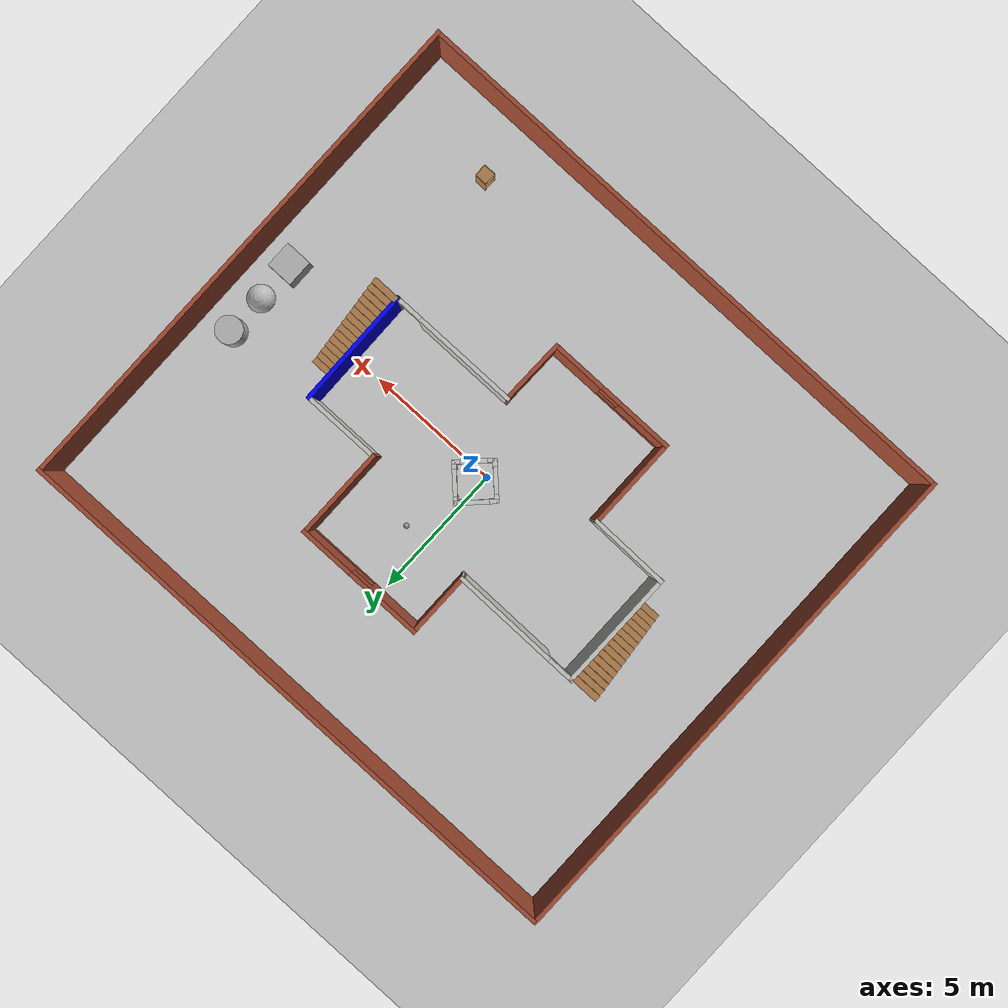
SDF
<sdf version="1.6">
 <world name="default">
  <model name="ground_plane">
   <static>1</static>
   <link name="link">
    <collision name="collision">
     <geometry><plane><normal>0 0 1</normal><size>100 100</size></plane></geometry>
     <surface><friction><ode><mu>100</mu><mu2>50</mu2></ode></friction></surface>
    </collision>
    <visual name="visual">
     <cast_shadows>0</cast_shadows>
     <geometry><plane><normal>0 0 1</normal><size>100 100</size></plane></geometry>
     <material>
      <script><uri>file://media/materials/scripts/gazebo.material</uri><name>Gazebo/Grey</name></script>
     </material>
    </visual>
   </link>
  </model>
  <model name="Gyandeeps_World">
   <link name="Stairs_1">
    <visual name="Stairs_1_Visual_0">
     <pose>6.58293 0.987313 0.083333 0 -0 0</pose>
     <geometry><box><size>1 0.233333 0.166667</size></box></geometry>
     <material>
      <script><uri>file://media/materials/scripts/gazebo.material</uri><name>Gazebo/Wood</name></script>
      <ambient>1 1 1 1</ambient>
     </material>
     <meta><layer>0</layer></meta>
    </visual>
    <collision name="Stairs_1_Collision_0">
     <geometry><box><size>1 0.233333 0.166667</size></box></geometry>
     <pose>6.58293 0.987313 0.083333 0 -0 0</pose>
    </collision>
    <visual name="Stairs_1_Visual_1">
     <pose>6.58293 0.75398 0.25 0 -0 0</pose>
     <geometry><box><size>1 0.233333 0.166667</size></box></geometry>
     <material>
      <script><uri>file://media/materials/scripts/gazebo.material</uri><name>Gazebo/Wood</name></script>
      <ambient>1 1 1 1</ambient>
     </material>
     <meta><layer>0</layer></meta>
    </visual>
    <collision name="Stairs_1_Collision_1">
     <geometry><box><size>1 0.233333 0.166667</size></box></geometry>
     <pose>6.58293 0.75398 0.25 0 -0 0</pose>
    </collision>
    <visual name="Stairs_1_Visual_2">
     <pose>6.58293 0.520647 0.416667 0 -0 0</pose>
     <geometry><box><size>1 0.233333 0.166667</size></box></geometry>
     <material>
      <script><uri>file://media/materials/scripts/gazebo.material</uri><name>Gazebo/Wood</name></script>
      <ambient>1 1 1 1</ambient>
     </material>
     <meta><layer>0</layer></meta>
    </visual>
    <collision name="Stairs_1_Collision_2">
     <geometry><box><size>1 0.233333 0.166667</size></box></geometry>
     <pose>6.58293 0.520647 0.416667 0 -0 0</pose>
    </collision>
    <visual name="Stairs_1_Visual_3">
     <pose>6.58293 0.287313 0.583333 0 -0 0</pose>
     <geometry><box><size>1 0.233333 0.166667</size></box></geometry>
     <material>
      <script><uri>file://media/materials/scripts/gazebo.material</uri><name>Gazebo/Wood</name></script>
      <ambient>1 1 1 1</ambient>
     </material>
     <meta><layer>0</layer></meta>
    </visual>
    <collision name="Stairs_1_Collision_3">
     <geometry><box><size>1 0.233333 0.166667</size></box></geometry>
     <pose>6.58293 0.287313 0.583333 0 -0 0</pose>
    </collision>
    <visual name="Stairs_1_Visual_4">
     <pose>6.58293 0.05398 0.75 0 -0 0</pose>
     <geometry><box><size>1 0.233333 0.166667</size></box></geometry>
     <material>
      <script><uri>file://media/materials/scripts/gazebo.material</uri><name>Gazebo/Wood</name></script>
      <ambient>1 1 1 1</ambient>
     </material>
     <meta><layer>0</layer></meta>
    </visual>
    <collision name="Stairs_1_Collision_4">
     <geometry><box><size>1 0.233333 0.166667</size></box></geometry>
     <pose>6.58293 0.05398 0.75 0 -0 0</pose>
    </collision>
    <visual name="Stairs_1_Visual_5">
     <pose>6.58293 -0.179353 0.916667 0 -0 0</pose>
     <geometry><box><size>1 0.233333 0.166667</size></box></geometry>
     <material>
      <script><uri>file://media/materials/scripts/gazebo.material</uri><name>Gazebo/Wood</name></script>
      <ambient>1 1 1 1</ambient>
     </material>
     <meta><layer>0</layer></meta>
    </visual>
    <collision name="Stairs_1_Collision_5">
     <geometry><box><size>1 0.233333 0.166667</size></box></geometry>
     <pose>6.58293 -0.179353 0.916667 0 -0 0</pose>
    </collision>
    <visual name="Stairs_1_Visual_6">
     <pose>6.58293 -0.412687 1.08333 0 -0 0</pose>
     <geometry><box><size>1 0.233333 0.166667</size></box></geometry>
     <material>
      <script><uri>file://media/materials/scripts/gazebo.material</uri><name>Gazebo/Wood</name></script>
      <ambient>1 1 1 1</ambient>
     </material>
     <meta><layer>0</layer></meta>
    </visual>
    <collision name="Stairs_1_Collision_6">
     <geometry><box><size>1 0.233333 0.166667</size></box></geometry>
     <pose>6.58293 -0.412687 1.08333 0 -0 0</pose>
    </collision>
    <visual name="Stairs_1_Visual_7">
     <pose>6.58293 -0.64602 1.25 0 -0 0</pose>
     <geometry><box><size>1 0.233333 0.166667</size></box></geometry>
     <material>
      <script><uri>file://media/materials/scripts/gazebo.material</uri><name>Gazebo/Wood</name></script>
      <ambient>1 1 1 1</ambient>
     </material>
     <meta><layer>0</layer></meta>
    </visual>
    <collision name="Stairs_1_Collision_7">
     <geometry><box><size>1 0.233333 0.166667</size></box></geometry>
     <pose>6.58293 -0.64602 1.25 0 -0 0</pose>
    </collision>
    <visual name="Stairs_1_Visual_8">
     <pose>6.58293 -0.879353 1.41667 0 -0 0</pose>
     <geometry><box><size>1 0.233333 0.166667</size></box></geometry>
     <material>
      <script><uri>file://media/materials/scripts/gazebo.material</uri><name>Gazebo/Wood</name></script>
      <ambient>1 1 1 1</ambient>
     </material>
     <meta><layer>0</layer></meta>
    </visual>
    <collision name="Stairs_1_Collision_8">
     <geometry><box><size>1 0.233333 0.166667</size></box></geometry>
     <pose>6.58293 -0.879353 1.41667 0 -0 0</pose>
    </collision>
    <visual name="Stairs_1_Visual_9">
     <pose>6.58293 -1.11269 1.58333 0 -0 0</pose>
     <geometry><box><size>1 0.233333 0.166667</size></box></geometry>
     <material>
      <script><uri>file://media/materials/scripts/gazebo.material</uri><name>Gazebo/Wood</name></script>
      <ambient>1 1 1 1</ambient>
     </material>
     <meta><layer>0</layer></meta>
    </visual>
    <collision name="Stairs_1_Collision_9">
     <geometry><box><size>1 0.233333 0.166667</size></box></geometry>
     <pose>6.58293 -1.11269 1.58333 0 -0 0</pose>
    </collision>
    <visual name="Stairs_1_Visual_10">
     <pose>6.58293 -1.34602 1.75 0 -0 0</pose>
     <geometry><box><size>1 0.233333 0.166667</size></box></geometry>
     <material>
      <script><uri>file://media/materials/scripts/gazebo.material</uri><name>Gazebo/Wood</name></script>
      <ambient>1 1 1 1</ambient>
     </material>
     <meta><layer>0</layer></meta>
    </visual>
    <collision name="Stairs_1_Collision_10">
     <geometry><box><size>1 0.233333 0.166667</size></box></geometry>
     <pose>6.58293 -1.34602 1.75 0 -0 0</pose>
    </collision>
    <visual name="Stairs_1_Visual_11">
     <pose>6.58293 -1.57935 1.91667 0 -0 0</pose>
     <geometry><box><size>1 0.233333 0.166667</size></box></geometry>
     <material>
      <script><uri>file://media/materials/scripts/gazebo.material</uri><name>Gazebo/Wood</name></script>
      <ambient>1 1 1 1</ambient>
     </material>
     <meta><layer>0</layer></meta>
    </visual>
    <collision name="Stairs_1_Collision_11">
     <geometry><box><size>1 0.233333 0.166667</size></box></geometry>
     <pose>6.58293 -1.57935 1.91667 0 -0 0</pose>
    </collision>
    <visual name="Stairs_1_Visual_12">
     <pose>6.58293 -1.81269 2.08333 0 -0 0</pose>
     <geometry><box><size>1 0.233333 0.166667</size></box></geometry>
     <material>
      <script><uri>file://media/materials/scripts/gazebo.material</uri><name>Gazebo/Wood</name></script>
      <ambient>1 1 1 1</ambient>
     </material>
     <meta><layer>0</layer></meta>
    </visual>
    <collision name="Stairs_1_Collision_12">
     <geometry><box><size>1 0.233333 0.166667</size></box></geometry>
     <pose>6.58293 -1.81269 2.08333 0 -0 0</pose>
    </collision>
    <visual name="Stairs_1_Visual_13">
     <pose>6.58293 -2.04602 2.25 0 -0 0</pose>
     <geometry><box><size>1 0.233333 0.166667</size></box></geometry>
     <material>
      <script><uri>file://media/materials/scripts/gazebo.material</uri><name>Gazebo/Wood</name></script>
      <ambient>1 1 1 1</ambient>
     </material>
     <meta><layer>0</layer></meta>
    </visual>
    <collision name="Stairs_1_Collision_13">
     <geometry><box><size>1 0.233333 0.166667</size></box></geometry>
     <pose>6.58293 -2.04602 2.25 0 -0 0</pose>
    </collision>
    <visual name="Stairs_1_Visual_14">
     <pose>6.58293 -2.27935 2.41667 0 -0 0</pose>
     <geometry><box><size>1 0.233333 0.166667</size></box></geometry>
     <material>
      <script><uri>file://media/materials/scripts/gazebo.material</uri><name>Gazebo/Wood</name></script>
      <ambient>1 1 1 1</ambient>
     </material>
     <meta><layer>0</layer></meta>
    </visual>
    <collision name="Stairs_1_Collision_14">
     <geometry><box><size>1 0.233333 0.166667</size></box></geometry>
     <pose>6.58293 -2.27935 2.41667 0 -0 0</pose>
    </collision>
   </link>
   <link name="Stairs_2">
    <visual name="Stairs_2_Visual_0">
     <pose>-7.05865 -0.36 0.083333 0 -0 -3.14159</pose>
     <geometry><box><size>1 0.233333 0.166667</size></box></geometry>
     <material>
      <script><uri>file://media/materials/scripts/gazebo.material</uri><name>Gazebo/Wood</name></script>
      <ambient>1 1 1 1</ambient>
     </material>
     <meta><layer>0</layer></meta>
    </visual>
    <collision name="Stairs_2_Collision_0">
     <geometry><box><size>1 0.233333 0.166667</size></box></geometry>
     <pose>-7.05865 -0.36 0.083333 0 -0 -3.14159</pose>
    </collision>
    <visual name="Stairs_2_Visual_1">
     <pose>-7.05865 -0.126666 0.25 0 -0 -3.14159</pose>
     <geometry><box><size>1 0.233333 0.166667</size></box></geometry>
     <material>
      <script><uri>file://media/materials/scripts/gazebo.material</uri><name>Gazebo/Wood</name></script>
      <ambient>1 1 1 1</ambient>
     </material>
     <meta><layer>0</layer></meta>
    </visual>
    <collision name="Stairs_2_Collision_1">
     <geometry><box><size>1 0.233333 0.166667</size></box></geometry>
     <pose>-7.05865 -0.126666 0.25 0 -0 -3.14159</pose>
    </collision>
    <visual name="Stairs_2_Visual_2">
     <pose>-7.05865 0.106667 0.416667 0 -0 -3.14159</pose>
     <geometry><box><size>1 0.233333 0.166667</size></box></geometry>
     <material>
      <script><uri>file://media/materials/scripts/gazebo.material</uri><name>Gazebo/Wood</name></script>
      <ambient>1 1 1 1</ambient>
     </material>
     <meta><layer>0</layer></meta>
    </visual>
    <collision name="Stairs_2_Collision_2">
     <geometry><box><size>1 0.233333 0.166667</size></box></geometry>
     <pose>-7.05865 0.106667 0.416667 0 -0 -3.14159</pose>
    </collision>
    <visual name="Stairs_2_Visual_3">
     <pose>-7.05865 0.34 0.583333 0 -0 -3.14159</pose>
     <geometry><box><size>1 0.233333 0.166667</size></box></geometry>
     <material>
      <script><uri>file://media/materials/scripts/gazebo.material</uri><name>Gazebo/Wood</name></script>
      <ambient>1 1 1 1</ambient>
     </material>
     <meta><layer>0</layer></meta>
    </visual>
    <collision name="Stairs_2_Collision_3">
     <geometry><box><size>1 0.233333 0.166667</size></box></geometry>
     <pose>-7.05865 0.34 0.583333 0 -0 -3.14159</pose>
    </collision>
    <visual name="Stairs_2_Visual_4">
     <pose>-7.05865 0.573334 0.75 0 -0 -3.14159</pose>
     <geometry><box><size>1 0.233333 0.166667</size></box></geometry>
     <material>
      <script><uri>file://media/materials/scripts/gazebo.material</uri><name>Gazebo/Wood</name></script>
      <ambient>1 1 1 1</ambient>
     </material>
     <meta><layer>0</layer></meta>
    </visual>
    <collision name="Stairs_2_Collision_4">
     <geometry><box><size>1 0.233333 0.166667</size></box></geometry>
     <pose>-7.05865 0.573334 0.75 0 -0 -3.14159</pose>
    </collision>
    <visual name="Stairs_2_Visual_5">
     <pose>-7.05865 0.806667 0.916667 0 -0 -3.14159</pose>
     <geometry><box><size>1 0.233333 0.166667</size></box></geometry>
     <material>
      <script><uri>file://media/materials/scripts/gazebo.material</uri><name>Gazebo/Wood</name></script>
      <ambient>1 1 1 1</ambient>
     </material>
     <meta><layer>0</layer></meta>
    </visual>
    <collision name="Stairs_2_Collision_5">
     <geometry><box><size>1 0.233333 0.166667</size></box></geometry>
     <pose>-7.05865 0.806667 0.916667 0 -0 -3.14159</pose>
    </collision>
    <visual name="Stairs_2_Visual_6">
     <pose>-7.05865 1.04 1.08333 0 -0 -3.14159</pose>
     <geometry><box><size>1 0.233333 0.166667</size></box></geometry>
     <material>
      <script><uri>file://media/materials/scripts/gazebo.material</uri><name>Gazebo/Wood</name></script>
      <ambient>1 1 1 1</ambient>
     </material>
     <meta><layer>0</layer></meta>
    </visual>
    <collision name="Stairs_2_Collision_6">
     <geometry><box><size>1 0.233333 0.166667</size></box></geometry>
     <pose>-7.05865 1.04 1.08333 0 -0 -3.14159</pose>
    </collision>
    <visual name="Stairs_2_Visual_7">
     <pose>-7.05865 1.27333 1.25 0 -0 -3.14159</pose>
     <geometry><box><size>1 0.233333 0.166667</size></box></geometry>
     <material>
      <script><uri>file://media/materials/scripts/gazebo.material</uri><name>Gazebo/Wood</name></script>
      <ambient>1 1 1 1</ambient>
     </material>
     <meta><layer>0</layer></meta>
    </visual>
    <collision name="Stairs_2_Collision_7">
     <geometry><box><size>1 0.233333 0.166667</size></box></geometry>
     <pose>-7.05865 1.27333 1.25 0 -0 -3.14159</pose>
    </collision>
    <visual name="Stairs_2_Visual_8">
     <pose>-7.05865 1.50667 1.41667 0 -0 -3.14159</pose>
     <geometry><box><size>1 0.233333 0.166667</size></box></geometry>
     <material>
      <script><uri>file://media/materials/scripts/gazebo.material</uri><name>Gazebo/Wood</name></script>
      <ambient>1 1 1 1</ambient>
     </material>
     <meta><layer>0</layer></meta>
    </visual>
    <collision name="Stairs_2_Collision_8">
     <geometry><box><size>1 0.233333 0.166667</size></box></geometry>
     <pose>-7.05865 1.50667 1.41667 0 -0 -3.14159</pose>
    </collision>
    <visual name="Stairs_2_Visual_9">
     <pose>-7.05865 1.74 1.58333 0 -0 -3.14159</pose>
     <geometry><box><size>1 0.233333 0.166667</size></box></geometry>
     <material>
      <script><uri>file://media/materials/scripts/gazebo.material</uri><name>Gazebo/Wood</name></script>
      <ambient>1 1 1 1</ambient>
     </material>
     <meta><layer>0</layer></meta>
    </visual>
    <collision name="Stairs_2_Collision_9">
     <geometry><box><size>1 0.233333 0.166667</size></box></geometry>
     <pose>-7.05865 1.74 1.58333 0 -0 -3.14159</pose>
    </collision>
    <visual name="Stairs_2_Visual_10">
     <pose>-7.05865 1.97333 1.75 0 -0 -3.14159</pose>
     <geometry><box><size>1 0.233333 0.166667</size></box></geometry>
     <material>
      <script><uri>file://media/materials/scripts/gazebo.material</uri><name>Gazebo/Wood</name></script>
      <ambient>1 1 1 1</ambient>
     </material>
     <meta><layer>0</layer></meta>
    </visual>
    <collision name="Stairs_2_Collision_10">
     <geometry><box><size>1 0.233333 0.166667</size></box></geometry>
     <pose>-7.05865 1.97333 1.75 0 -0 -3.14159</pose>
    </collision>
    <visual name="Stairs_2_Visual_11">
     <pose>-7.05865 2.20667 1.91667 0 -0 -3.14159</pose>
     <geometry><box><size>1 0.233333 0.166667</size></box></geometry>
     <material>
      <script><uri>file://media/materials/scripts/gazebo.material</uri><name>Gazebo/Wood</name></script>
      <ambient>1 1 1 1</ambient>
     </material>
     <meta><layer>0</layer></meta>
    </visual>
    <collision name="Stairs_2_Collision_11">
     <geometry><box><size>1 0.233333 0.166667</size></box></geometry>
     <pose>-7.05865 2.20667 1.91667 0 -0 -3.14159</pose>
    </collision>
    <visual name="Stairs_2_Visual_12">
     <pose>-7.05865 2.44 2.08333 0 -0 -3.14159</pose>
     <geometry><box><size>1 0.233333 0.166667</size></box></geometry>
     <material>
      <script><uri>file://media/materials/scripts/gazebo.material</uri><name>Gazebo/Wood</name></script>
      <ambient>1 1 1 1</ambient>
     </material>
     <meta><layer>0</layer></meta>
    </visual>
    <collision name="Stairs_2_Collision_12">
     <geometry><box><size>1 0.233333 0.166667</size></box></geometry>
     <pose>-7.05865 2.44 2.08333 0 -0 -3.14159</pose>
    </collision>
    <visual name="Stairs_2_Visual_13">
     <pose>-7.05865 2.67333 2.25 0 -0 -3.14159</pose>
     <geometry><box><size>1 0.233333 0.166667</size></box></geometry>
     <material>
      <script><uri>file://media/materials/scripts/gazebo.material</uri><name>Gazebo/Wood</name></script>
      <ambient>1 1 1 1</ambient>
     </material>
     <meta><layer>0</layer></meta>
    </visual>
    <collision name="Stairs_2_Collision_13">
     <geometry><box><size>1 0.233333 0.166667</size></box></geometry>
     <pose>-7.05865 2.67333 2.25 0 -0 -3.14159</pose>
    </collision>
    <visual name="Stairs_2_Visual_14">
     <pose>-7.05865 2.90667 2.41667 0 -0 -3.14159</pose>
     <geometry><box><size>1 0.233333 0.166667</size></box></geometry>
     <material>
      <script><uri>file://media/materials/scripts/gazebo.material</uri><name>Gazebo/Wood</name></script>
      <ambient>1 1 1 1</ambient>
     </material>
     <meta><layer>0</layer></meta>
    </visual>
    <collision name="Stairs_2_Collision_14">
     <geometry><box><size>1 0.233333 0.166667</size></box></geometry>
     <pose>-7.05865 2.90667 2.41667 0 -0 -3.14159</pose>
    </collision>
   </link>
   <link name="Wall_11">
    <collision name="Wall_11_Collision">
     <geometry><box><size>3 0.15 2.5</size></box></geometry>
     <pose>0 0 1.25 0 -0 0</pose>
    </collision>
    <visual name="Wall_11_Visual">
     <pose>0 0 1.25 0 -0 0</pose>
     <geometry><box><size>3 0.15 2.5</size></box></geometry>
     <material>
      <script><uri>file://media/materials/scripts/gazebo.material</uri><name>Gazebo/CeilingTiled</name></script>
      <ambient>0 0 1 1</ambient>
     </material>
     <meta><layer>0</layer></meta>
    </visual>
    <pose>-5.06858 -1.3399 0 0 -0 3.12748</pose>
   </link>
   <link name="Wall_14">
    <collision name="Wall_14_Collision">
     <geometry><box><size>4.5 0.15 2.5</size></box></geometry>
     <pose>0 0 1.25 0 -0 0</pose>
    </collision>
    <visual name="Wall_14_Visual">
     <pose>0 0 1.25 0 -0 0</pose>
     <geometry><box><size>4.5 0.15 2.5</size></box></geometry>
     <material>
      <script><uri>file://media/materials/scripts/gazebo.material</uri><name>Gazebo/CeilingTiled</name></script>
      <ambient>0 0 1 1</ambient>
     </material>
     <meta><layer>0</layer></meta>
    </visual>
    <pose>-6.49358 0.835104 0 0 -0 1.5708</pose>
   </link>
   <link name="Wall_16">
    <pose>-4.06858 3.0101 0 0 0 -0.008294</pose>
    <visual name="Wall_16_Visual_0">
     <pose>-2.4257 0 1.25 0 -0 0</pose>
     <geometry><box><size>0.148605 0.15 2.5</size></box></geometry>
     <material>
      <script><uri>file://media/materials/scripts/gazebo.material</uri><name>Gazebo/CeilingTiled</name></script>
      <ambient>0 0 1 1</ambient>
     </material>
     <meta><layer>0</layer></meta>
    </visual>
    <collision name="Wall_16_Collision_0">
     <geometry><box><size>0.148605 0.15 2.5</size></box></geometry>
     <pose>-2.4257 0 1.25 0 -0 0</pose>
    </collision>
    <visual name="Wall_16_Visual_1">
     <pose>0.524303 0 1.25 0 -0 0</pose>
     <geometry><box><size>3.9514 0.15 2.5</size></box></geometry>
     <material>
      <script><uri>file://media/materials/scripts/gazebo.material</uri><name>Gazebo/CeilingTiled</name></script>
      <ambient>0 0 1 1</ambient>
     </material>
     <meta><layer>0</layer></meta>
    </visual>
    <collision name="Wall_16_Collision_1">
     <geometry><box><size>3.9514 0.15 2.5</size></box></geometry>
     <pose>0.524303 0 1.25 0 -0 0</pose>
    </collision>
    <visual name="Wall_16_Visual_2">
     <pose>-1.90139 0 2.25 0 -0 0</pose>
     <geometry><box><size>0.9 0.15 0.5</size></box></geometry>
     <material>
      <script><uri>file://media/materials/scripts/gazebo.material</uri><name>Gazebo/CeilingTiled</name></script>
      <ambient>0 0 1 1</ambient>
     </material>
     <meta><layer>0</layer></meta>
    </visual>
    <collision name="Wall_16_Collision_2">
     <geometry><box><size>0.9 0.15 0.5</size></box></geometry>
     <pose>-1.90139 0 2.25 0 -0 0</pose>
    </collision>
   </link>
   <link name="Wall_26">
    <pose>0.783421 5.32999 0 0 -0 0</pose>
    <visual name="Wall_26_Visual_0">
     <pose>-1.44949 0 1.25 0 -0 0</pose>
     <geometry><box><size>2.10103 0.15 2.5</size></box></geometry>
     <material>
      <script><uri>file://media/materials/scripts/gazebo.material</uri><name>Gazebo/Bricks</name></script>
      <ambient>0.996078 0.47451 0.0196078 1</ambient>
     </material>
     <meta><layer>0</layer></meta>
    </visual>
    <collision name="Wall_26_Collision_0">
     <geometry><box><size>2.10103 0.15 2.5</size></box></geometry>
     <pose>-1.44949 0 1.25 0 -0 0</pose>
    </collision>
    <visual name="Wall_26_Visual_1">
     <pose>1.05051 0 0.25 0 -0 0</pose>
     <geometry><box><size>2.89897 0.15 0.5</size></box></geometry>
     <material>
      <script><uri>file://media/materials/scripts/gazebo.material</uri><name>Gazebo/Bricks</name></script>
      <ambient>0.996078 0.47451 0.0196078 1</ambient>
     </material>
     <meta><layer>0</layer></meta>
    </visual>
    <collision name="Wall_26_Collision_1">
     <geometry><box><size>2.89897 0.15 0.5</size></box></geometry>
     <pose>1.05051 0 0.25 0 -0 0</pose>
    </collision>
    <visual name="Wall_26_Visual_2">
     <pose>1.45051 0 1.5 0 -0 0</pose>
     <geometry><box><size>2.09897 0.15 2</size></box></geometry>
     <material>
      <script><uri>file://media/materials/scripts/gazebo.material</uri><name>Gazebo/Bricks</name></script>
      <ambient>0.996078 0.47451 0.0196078 1</ambient>
     </material>
     <meta><layer>0</layer></meta>
    </visual>
    <collision name="Wall_26_Collision_2">
     <geometry><box><size>2.09897 0.15 2</size></box></geometry>
     <pose>1.45051 0 1.5 0 -0 0</pose>
    </collision>
    <visual name="Wall_26_Visual_3">
     <pose>0.001028 0 1.9 0 -0 0</pose>
     <geometry><box><size>0.8 0.15 1.2</size></box></geometry>
     <material>
      <script><uri>file://media/materials/scripts/gazebo.material</uri><name>Gazebo/Bricks</name></script>
      <ambient>0.996078 0.47451 0.0196078 1</ambient>
     </material>
     <meta><layer>0</layer></meta>
    </visual>
    <collision name="Wall_26_Collision_3">
     <geometry><box><size>0.8 0.15 1.2</size></box></geometry>
     <pose>0.001028 0 1.9 0 -0 0</pose>
    </collision>
   </link>
   <link name="Wall_27">
    <collision name="Wall_27_Collision">
     <geometry><box><size>3.48 0.15 2.5</size></box></geometry>
     <pose>0 0 1.25 0 -0 0</pose>
    </collision>
    <visual name="Wall_27_Visual">
     <pose>0 0 1.25 0 -0 0</pose>
     <geometry><box><size>3.48 0.15 2.5</size></box></geometry>
     <material>
      <script><uri>file://media/materials/scripts/gazebo.material</uri><name>Gazebo/Bricks</name></script>
      <ambient>0.996078 0.47451 0.0196078 1</ambient>
     </material>
     <meta><layer>0</layer></meta>
    </visual>
    <pose>3.20842 3.65499 0 0 0 -1.5708</pose>
   </link>
   <link name="Wall_29">
    <collision name="Wall_29_Collision">
     <geometry><box><size>4.5 0.15 2.5</size></box></geometry>
     <pose>0 0 1.25 0 -0 0</pose>
    </collision>
    <visual name="Wall_29_Visual">
     <pose>0 0 1.25 0 -0 0</pose>
     <geometry><box><size>4.5 0.15 2.5</size></box></geometry>
     <material>
      <script><uri>file://media/materials/scripts/gazebo.material</uri><name>Gazebo/Grey</name></script>
      <ambient>0 0 1 1</ambient>
     </material>
     <meta><layer>0</layer></meta>
    </visual>
    <pose>6.07653 -0.18501 0 0 -0 1.58004</pose>
   </link>
   <link name="Wall_30">
    <collision name="Wall_30_Collision">
     <geometry><box><size>2.998 0.15 2.5</size></box></geometry>
     <pose>0 0 1.25 0 -0 0</pose>
    </collision>
    <visual name="Wall_30_Visual">
     <pose>0 0 1.25 0 -0 0</pose>
     <geometry><box><size>2.998 0.15 2.5</size></box></geometry>
     <material>
      <script><uri>file://media/materials/scripts/gazebo.material</uri><name>Gazebo/CeilingTiled</name></script>
      <ambient>0 0 1 1</ambient>
     </material>
     <meta><layer>0</layer></meta>
    </visual>
    <pose>4.63242 1.98999 0 0 -0 3.14159</pose>
   </link>
   <link name="Wall_32">
    <pose>-0.288264 0.836119 0 0 0 -2.35619</pose>
    <visual name="Wall_32_Visual_0">
     <pose>-0.606035 0 1.25 0 -0 0</pose>
     <geometry><box><size>0.28793 0.15 2.5</size></box></geometry>
     <material>
      <script><uri>file://media/materials/scripts/gazebo.material</uri><name>Gazebo/CeilingTiled</name></script>
      <ambient>0 0.333333 0.498039 1</ambient>
     </material>
     <meta><layer>0</layer></meta>
    </visual>
    <collision name="Wall_32_Collision_0">
     <geometry><box><size>0.28793 0.15 2.5</size></box></geometry>
     <pose>-0.606035 0 1.25 0 -0 0</pose>
    </collision>
    <visual name="Wall_32_Visual_1">
     <pose>0.593965 0 1.25 0 -0 0</pose>
     <geometry><box><size>0.31207 0.15 2.5</size></box></geometry>
     <material>
      <script><uri>file://media/materials/scripts/gazebo.material</uri><name>Gazebo/CeilingTiled</name></script>
      <ambient>0 0.333333 0.498039 1</ambient>
     </material>
     <meta><layer>0</layer></meta>
    </visual>
    <collision name="Wall_32_Collision_1">
     <geometry><box><size>0.31207 0.15 2.5</size></box></geometry>
     <pose>0.593965 0 1.25 0 -0 0</pose>
    </collision>
    <visual name="Wall_32_Visual_2">
     <pose>-0.01207 0 2.25 0 -0 0</pose>
     <geometry><box><size>0.9 0.15 0.5</size></box></geometry>
     <material>
      <script><uri>file://media/materials/scripts/gazebo.material</uri><name>Gazebo/CeilingTiled</name></script>
      <ambient>0 0.333333 0.498039 1</ambient>
     </material>
     <meta><layer>0</layer></meta>
    </visual>
    <collision name="Wall_32_Collision_2">
     <geometry><box><size>0.9 0.15 0.5</size></box></geometry>
     <pose>-0.01207 0 2.25 0 -0 0</pose>
    </collision>
   </link>
   <link name="Wall_33">
    <pose>-0.288264 -0.118475 0 0 0 -0.785398</pose>
    <visual name="Wall_33_Visual_0">
     <pose>-0.595093 0 1.25 0 -0 0</pose>
     <geometry><box><size>0.309813 0.15 2.5</size></box></geometry>
     <material>
      <script><uri>file://media/materials/scripts/gazebo.material</uri><name>Gazebo/CeilingTiled</name></script>
      <ambient>0 0.333333 0.498039 1</ambient>
     </material>
     <meta><layer>0</layer></meta>
    </visual>
    <collision name="Wall_33_Collision_0">
     <geometry><box><size>0.309813 0.15 2.5</size></box></geometry>
     <pose>-0.595093 0 1.25 0 -0 0</pose>
    </collision>
    <visual name="Wall_33_Visual_1">
     <pose>0.604907 0 1.25 0 -0 0</pose>
     <geometry><box><size>0.290187 0.15 2.5</size></box></geometry>
     <material>
      <script><uri>file://media/materials/scripts/gazebo.material</uri><name>Gazebo/CeilingTiled</name></script>
      <ambient>0 0.333333 0.498039 1</ambient>
     </material>
     <meta><layer>0</layer></meta>
    </visual>
    <collision name="Wall_33_Collision_1">
     <geometry><box><size>0.290187 0.15 2.5</size></box></geometry>
     <pose>0.604907 0 1.25 0 -0 0</pose>
    </collision>
    <visual name="Wall_33_Visual_2">
     <pose>0.009813 0 2.25 0 -0 0</pose>
     <geometry><box><size>0.9 0.15 0.5</size></box></geometry>
     <material>
      <script><uri>file://media/materials/scripts/gazebo.material</uri><name>Gazebo/CeilingTiled</name></script>
      <ambient>0 0.333333 0.498039 1</ambient>
     </material>
     <meta><layer>0</layer></meta>
    </visual>
    <collision name="Wall_33_Collision_2">
     <geometry><box><size>0.9 0.15 0.5</size></box></geometry>
     <pose>0.009813 0 2.25 0 -0 0</pose>
    </collision>
   </link>
   <link name="Wall_34">
    <pose>0.66633 -0.118475 0 0 -0 0.785398</pose>
    <visual name="Wall_34_Visual_0">
     <pose>-0.593965 0 1.25 0 -0 0</pose>
     <geometry><box><size>0.31207 0.15 2.5</size></box></geometry>
     <material>
      <script><uri>file://media/materials/scripts/gazebo.material</uri><name>Gazebo/CeilingTiled</name></script>
      <ambient>0 0.333333 0.498039 1</ambient>
     </material>
     <meta><layer>0</layer></meta>
    </visual>
    <collision name="Wall_34_Collision_0">
     <geometry><box><size>0.31207 0.15 2.5</size></box></geometry>
     <pose>-0.593965 0 1.25 0 -0 0</pose>
    </collision>
    <visual name="Wall_34_Visual_1">
     <pose>0.606035 0 1.25 0 -0 0</pose>
     <geometry><box><size>0.28793 0.15 2.5</size></box></geometry>
     <material>
      <script><uri>file://media/materials/scripts/gazebo.material</uri><name>Gazebo/CeilingTiled</name></script>
      <ambient>0 0.333333 0.498039 1</ambient>
     </material>
     <meta><layer>0</layer></meta>
    </visual>
    <collision name="Wall_34_Collision_1">
     <geometry><box><size>0.28793 0.15 2.5</size></box></geometry>
     <pose>0.606035 0 1.25 0 -0 0</pose>
    </collision>
    <visual name="Wall_34_Visual_2">
     <pose>0.01207 0 2.25 0 -0 0</pose>
     <geometry><box><size>0.9 0.15 0.5</size></box></geometry>
     <material>
      <script><uri>file://media/materials/scripts/gazebo.material</uri><name>Gazebo/CeilingTiled</name></script>
      <ambient>0 0.333333 0.498039 1</ambient>
     </material>
     <meta><layer>0</layer></meta>
    </visual>
    <collision name="Wall_34_Collision_2">
     <geometry><box><size>0.9 0.15 0.5</size></box></geometry>
     <pose>0.01207 0 2.25 0 -0 0</pose>
    </collision>
   </link>
   <link name="Wall_35">
    <pose>0.66633 0.836119 0 0 -0 2.35619</pose>
    <visual name="Wall_35_Visual_0">
     <pose>-0.592539 0 1.25 0 -0 0</pose>
     <geometry><box><size>0.314921 0.15 2.5</size></box></geometry>
     <material>
      <script><uri>file://media/materials/scripts/gazebo.material</uri><name>Gazebo/CeilingTiled</name></script>
      <ambient>0 0.333333 0.498039 1</ambient>
     </material>
     <meta><layer>0</layer></meta>
    </visual>
    <collision name="Wall_35_Collision_0">
     <geometry><box><size>0.314921 0.15 2.5</size></box></geometry>
     <pose>-0.592539 0 1.25 0 -0 0</pose>
    </collision>
    <visual name="Wall_35_Visual_1">
     <pose>0.607461 0 1.25 0 -0 0</pose>
     <geometry><box><size>0.285079 0.15 2.5</size></box></geometry>
     <material>
      <script><uri>file://media/materials/scripts/gazebo.material</uri><name>Gazebo/CeilingTiled</name></script>
      <ambient>0 0.333333 0.498039 1</ambient>
     </material>
     <meta><layer>0</layer></meta>
    </visual>
    <collision name="Wall_35_Collision_1">
     <geometry><box><size>0.285079 0.15 2.5</size></box></geometry>
     <pose>0.607461 0 1.25 0 -0 0</pose>
    </collision>
    <visual name="Wall_35_Visual_2">
     <pose>0.014921 0 2.25 0 -0 0</pose>
     <geometry><box><size>0.9 0.15 0.5</size></box></geometry>
     <material>
      <script><uri>file://media/materials/scripts/gazebo.material</uri><name>Gazebo/CeilingTiled</name></script>
      <ambient>0 0.333333 0.498039 1</ambient>
     </material>
     <meta><layer>0</layer></meta>
    </visual>
    <collision name="Wall_35_Collision_2">
     <geometry><box><size>0.9 0.15 0.5</size></box></geometry>
     <pose>0.014921 0 2.25 0 -0 0</pose>
    </collision>
   </link>
   <link name="Wall_37">
    <collision name="Wall_37_Collision">
     <geometry><box><size>2.49 0.15 2.5</size></box></geometry>
     <pose>0 0 1.25 0 -0 0</pose>
    </collision>
    <visual name="Wall_37_Visual">
     <pose>0 0 1.25 0 -0 0</pose>
     <geometry><box><size>2.49 0.15 2.5</size></box></geometry>
     <material>
      <script><uri>file://media/materials/scripts/gazebo.material</uri><name>Gazebo/Bricks</name></script>
      <ambient>0.996078 0.47451 0.0196078 1</ambient>
     </material>
     <meta><layer>0</layer></meta>
    </visual>
    <pose>-1.64258 4.15999 0 0 0 -1.57165</pose>
   </link>
   <link name="Wall_41">
    <collision name="Wall_41_Collision">
     <geometry><box><size>22 0.15 2.5</size></box></geometry>
     <pose>0 0 1.25 0 -0 0</pose>
    </collision>
    <visual name="Wall_41_Visual">
     <pose>0 0 1.25 0 -0 0</pose>
     <geometry><box><size>22 0.15 2.5</size></box></geometry>
     <material>
      <script><uri>file://media/materials/scripts/gazebo.material</uri><name>Gazebo/Bricks</name></script>
      <ambient>1 1 1 1</ambient>
     </material>
     <meta><layer>0</layer></meta>
    </visual>
    <pose>0.033421 9.67999 0 0 -0 0</pose>
   </link>
   <link name="Wall_46">
    <collision name="Wall_46_Collision">
     <geometry><box><size>19.5 0.15 2.5</size></box></geometry>
     <pose>0 0 1.25 0 -0 0</pose>
    </collision>
    <visual name="Wall_46_Visual">
     <pose>0 0 1.25 0 -0 0</pose>
     <geometry><box><size>19.5 0.15 2.5</size></box></geometry>
     <material>
      <script><uri>file://media/materials/scripts/gazebo.material</uri><name>Gazebo/Bricks</name></script>
      <ambient>1 1 1 1</ambient>
     </material>
     <meta><layer>0</layer></meta>
    </visual>
    <pose>-10.9584 -0.004957 0 0 -0 1.5708</pose>
   </link>
   <link name="Wall_48">
    <collision name="Wall_48_Collision">
     <geometry><box><size>19.5 0.15 2.5</size></box></geometry>
     <pose>0 0 1.25 0 -0 0</pose>
    </collision>
    <visual name="Wall_48_Visual">
     <pose>0 0 1.25 0 -0 0</pose>
     <geometry><box><size>19.5 0.15 2.5</size></box></geometry>
     <material>
      <script><uri>file://media/materials/scripts/gazebo.material</uri><name>Gazebo/Bricks</name></script>
      <ambient>1 1 1 1</ambient>
     </material>
     <meta><layer>0</layer></meta>
    </visual>
    <pose>10.9584 0.00499 0 0 0 -1.5708</pose>
   </link>
   <link name="Wall_5">
    <pose>3.65153 -2.36001 0 0 -0 3.14159</pose>
    <visual name="Wall_5_Visual_0">
     <pose>-2.42289 0 1.25 0 -0 0</pose>
     <geometry><box><size>0.15422 0.15 2.5</size></box></geometry>
     <material>
      <script><uri>file://media/materials/scripts/gazebo.material</uri><name>Gazebo/CeilingTiled</name></script>
      <ambient>0 0 1 1</ambient>
     </material>
     <meta><layer>0</layer></meta>
    </visual>
    <collision name="Wall_5_Collision_0">
     <geometry><box><size>0.15422 0.15 2.5</size></box></geometry>
     <pose>-2.42289 0 1.25 0 -0 0</pose>
    </collision>
    <visual name="Wall_5_Visual_1">
     <pose>0.52711 0 1.25 0 -0 0</pose>
     <geometry><box><size>3.94578 0.15 2.5</size></box></geometry>
     <material>
      <script><uri>file://media/materials/scripts/gazebo.material</uri><name>Gazebo/CeilingTiled</name></script>
      <ambient>0 0 1 1</ambient>
     </material>
     <meta><layer>0</layer></meta>
    </visual>
    <collision name="Wall_5_Collision_1">
     <geometry><box><size>3.94578 0.15 2.5</size></box></geometry>
     <pose>0.52711 0 1.25 0 -0 0</pose>
    </collision>
    <visual name="Wall_5_Visual_2">
     <pose>-1.89578 0 2.25 0 -0 0</pose>
     <geometry><box><size>0.9 0.15 0.5</size></box></geometry>
     <material>
      <script><uri>file://media/materials/scripts/gazebo.material</uri><name>Gazebo/CeilingTiled</name></script>
      <ambient>0 0 1 1</ambient>
     </material>
     <meta><layer>0</layer></meta>
    </visual>
    <collision name="Wall_5_Collision_2">
     <geometry><box><size>0.9 0.15 0.5</size></box></geometry>
     <pose>-1.89578 0 2.25 0 -0 0</pose>
    </collision>
   </link>
   <link name="Wall_50">
    <collision name="Wall_50_Collision">
     <geometry><box><size>22.0668 0.15 2.5</size></box></geometry>
     <pose>0 0 1.25 0 -0 0</pose>
    </collision>
    <visual name="Wall_50_Visual">
     <pose>0 0 1.25 0 -0 0</pose>
     <geometry><box><size>22.0668 0.15 2.5</size></box></geometry>
     <material>
      <script><uri>file://media/materials/scripts/gazebo.material</uri><name>Gazebo/Bricks</name></script>
      <ambient>1 1 1 1</ambient>
     </material>
     <meta><layer>0</layer></meta>
    </visual>
    <pose>0 -9.67498 0 0 -0 0.000454</pose>
   </link>
   <link name="Wall_7">
    <collision name="Wall_7_Collision">
     <geometry><box><size>2.5 0.15 2.5</size></box></geometry>
     <pose>0 0 1.25 0 -0 0</pose>
    </collision>
    <visual name="Wall_7_Visual">
     <pose>0 0 1.25 0 -0 0</pose>
     <geometry><box><size>2.5 0.15 2.5</size></box></geometry>
     <material>
      <script><uri>file://media/materials/scripts/gazebo.material</uri><name>Gazebo/Bricks</name></script>
      <ambient>0.996078 0.47451 0.0196078 1</ambient>
     </material>
     <meta><layer>0</layer></meta>
    </visual>
    <pose>1.22653 -3.53501 0 0 0 -1.58791</pose>
   </link>
   <link name="Wall_8">
    <pose>-1.21858 -4.71001 0 0 -0 3.14159</pose>
    <visual name="Wall_8_Visual_0">
     <pose>-1.45289 0 1.25 0 -0 0</pose>
     <geometry><box><size>2.09422 0.15 2.5</size></box></geometry>
     <material>
      <script><uri>file://media/materials/scripts/gazebo.material</uri><name>Gazebo/Bricks</name></script>
      <ambient>0.996078 0.47451 0.0196078 1</ambient>
     </material>
     <meta><layer>0</layer></meta>
    </visual>
    <collision name="Wall_8_Collision_0">
     <geometry><box><size>2.09422 0.15 2.5</size></box></geometry>
     <pose>-1.45289 0 1.25 0 -0 0</pose>
    </collision>
    <visual name="Wall_8_Visual_1">
     <pose>1.04711 0 0.25 0 -0 0</pose>
     <geometry><box><size>2.90578 0.15 0.5</size></box></geometry>
     <material>
      <script><uri>file://media/materials/scripts/gazebo.material</uri><name>Gazebo/Bricks</name></script>
      <ambient>0.996078 0.47451 0.0196078 1</ambient>
     </material>
     <meta><layer>0</layer></meta>
    </visual>
    <collision name="Wall_8_Collision_1">
     <geometry><box><size>2.90578 0.15 0.5</size></box></geometry>
     <pose>1.04711 0 0.25 0 -0 0</pose>
    </collision>
    <visual name="Wall_8_Visual_2">
     <pose>1.44711 0 1.5 0 -0 0</pose>
     <geometry><box><size>2.10578 0.15 2</size></box></geometry>
     <material>
      <script><uri>file://media/materials/scripts/gazebo.material</uri><name>Gazebo/Bricks</name></script>
      <ambient>0.996078 0.47451 0.0196078 1</ambient>
     </material>
     <meta><layer>0</layer></meta>
    </visual>
    <collision name="Wall_8_Collision_2">
     <geometry><box><size>2.10578 0.15 2</size></box></geometry>
     <pose>1.44711 0 1.5 0 -0 0</pose>
    </collision>
    <visual name="Wall_8_Visual_3">
     <pose>-0.00578 0 1.9 0 -0 0</pose>
     <geometry><box><size>0.8 0.15 1.2</size></box></geometry>
     <material>
      <script><uri>file://media/materials/scripts/gazebo.material</uri><name>Gazebo/Bricks</name></script>
      <ambient>0.996078 0.47451 0.0196078 1</ambient>
     </material>
     <meta><layer>0</layer></meta>
    </visual>
    <collision name="Wall_8_Collision_3">
     <geometry><box><size>0.8 0.15 1.2</size></box></geometry>
     <pose>-0.00578 0 1.9 0 -0 0</pose>
    </collision>
   </link>
   <link name="Wall_9">
    <collision name="Wall_9_Collision">
     <geometry><box><size>3.5 0.15 2.5</size></box></geometry>
     <pose>0 0 1.25 0 -0 0</pose>
    </collision>
    <visual name="Wall_9_Visual">
     <pose>0 0 1.25 0 -0 0</pose>
     <geometry><box><size>3.5 0.15 2.5</size></box></geometry>
     <material>
      <script><uri>file://media/materials/scripts/gazebo.material</uri><name>Gazebo/Bricks</name></script>
      <ambient>0.996078 0.47451 0.0196078 1</ambient>
     </material>
     <meta><layer>0</layer></meta>
    </visual>
    <pose>-3.64358 -3.03501 0 0 -0 1.5708</pose>
   </link>
   <static>1</static>
  </model>
  <model name="my_ball">
   <link name="link_0">
    <inertial>
     <mass>1</mass>
     <inertia><ixx>0.1</ixx><ixy>0</ixy><ixz>0</ixz><iyy>0.1</iyy><iyz>0</iyz><izz>0.1</izz></inertia>
    </inertial>
    <visual name="visual">
     <geometry><sphere><radius>0.1</radius></sphere></geometry>
     <material>
      <lighting>1</lighting>
      <script><uri>file://media/materials/scripts/gazebo.material</uri><name>Gazebo/Grey</name></script>
      <shader type="pixel"><normal_map>__default__</normal_map></shader>
      <ambient>1 1 1 1</ambient>
      <diffuse>1 1 1 1</diffuse>
      <specular>1 1 1 1</specular>
      <emissive>1 1 1 1</emissive>
     </material>
    </visual>
    <collision name="collision">
     <geometry><sphere><radius>0.1</radius></sphere></geometry>
     <surface>
      <friction>
       <ode><mu>1</mu><mu2>1</mu2><fdir1>0 0 0</fdir1><slip1>0</slip1><slip2>0</slip2></ode>
       <torsional>
        <coefficient>1</coefficient>
        <patch_radius>0</patch_radius>
        <surface_radius>0</surface_radius>
        <use_patch_radius>1</use_patch_radius>
        <ode><slip>0</slip></ode>
       </torsional>
      </friction>
      <bounce><restitution_coefficient>0</restitution_coefficient><threshold>1e+06</threshold></bounce>
      <contact>
       <collide_without_contact>0</collide_without_contact>
       <collide_without_contact_bitmask>1</collide_without_contact_bitmask>
       <collide_bitmask>1</collide_bitmask>
       <ode>
        <soft_cfm>0</soft_cfm>
        <soft_erp>0.2</soft_erp>
        <kp>1e+13</kp>
        <kd>1</kd>
        <max_vel>0.01</max_vel>
        <min_depth>0</min_depth>
       </ode>
       <bullet>
        <split_impulse>1</split_impulse>
        <split_impulse_penetration_threshold>-0.01</split_impulse_penetration_threshold>
        <soft_cfm>0</soft_cfm>
        <soft_erp>0.2</soft_erp>
        <kp>1e+13</kp>
        <kd>1</kd>
       </bullet>
      </contact>
     </surface>
    </collision>
   </link>
   <static>0</static>
   <pose>0.916736 3.08407 0.1 0 -0 0</pose>
  </model>
  <model name="cabinet">
   <static>1</static>
   <link name="cabinet_bottom_plate">
    <inertial>
     <pose>0 0 -1 0 -0 0</pose>
     <inertia><ixx>2.05</ixx><ixy>0</ixy><ixz>0</ixz><iyy>2.05</iyy><iyz>0</iyz><izz>2.05</izz></inertia>
     <mass>25</mass>
    </inertial>
    <collision name="cabinet_bottom_plate_geom">
     <pose>0 0 0.01 0 -0 0</pose>
     <geometry><box><size>0.45 0.45 0.02</size></box></geometry>
    </collision>
    <visual name="cabinet_bottom_plate_geom_visual">
     <pose>0 0 0.01 0 -0 0</pose>
     <geometry><box><size>0.45 0.45 0.02</size></box></geometry>
     <material>
      <script><uri>file://media/materials/scripts/gazebo.material</uri><name>Gazebo/Wood</name></script>
     </material>
    </visual>
    <collision name="cabinet_bottom_plate_geom_cabinet_back_plate">
     <pose>0.235 0 0.51 0 -0 0</pose>
     <geometry><box><size>0.02 0.45 1.02</size></box></geometry>
    </collision>
    <visual name="cabinet_bottom_plate_geom_cabinet_back_plate_visual">
     <pose>0.235 0 0.51 0 -0 0</pose>
     <geometry><box><size>0.02 0.45 1.02</size></box></geometry>
     <material>
      <script><uri>file://media/materials/scripts/gazebo.material</uri><name>Gazebo/Wood</name></script>
     </material>
    </visual>
    <collision name="cabinet_bottom_plate_geom_cabinet_left_plate">
     <pose>0 0.235 0.51 0 -0 0</pose>
     <geometry><box><size>0.45 0.02 1.02</size></box></geometry>
    </collision>
    <visual name="cabinet_bottom_plate_geom_cabinet_left_plate_visual">
     <pose>0 0.235 0.51 0 -0 0</pose>
     <geometry><box><size>0.45 0.02 1.02</size></box></geometry>
     <material>
      <script><uri>file://media/materials/scripts/gazebo.material</uri><name>Gazebo/Wood</name></script>
     </material>
    </visual>
    <collision name="cabinet_bottom_plate_geom_cabinet_middle_plate">
     <pose>0 0 0.51 0 -0 0</pose>
     <geometry><box><size>0.45 0.45 0.02</size></box></geometry>
    </collision>
    <visual name="cabinet_bottom_plate_geom_cabinet_middle_plate_visual">
     <pose>0 0 0.51 0 -0 0</pose>
     <geometry><box><size>0.45 0.45 0.02</size></box></geometry>
     <material>
      <script><uri>file://media/materials/scripts/gazebo.material</uri><name>Gazebo/Wood</name></script>
     </material>
    </visual>
    <collision name="cabinet_bottom_plate_geom_cabinet_right_plate">
     <pose>0 -0.235 0.51 0 -0 0</pose>
     <geometry><box><size>0.45 0.02 1.02</size></box></geometry>
    </collision>
    <visual name="cabinet_bottom_plate_geom_cabinet_right_plate_visual">
     <pose>0 -0.235 0.51 0 -0 0</pose>
     <geometry><box><size>0.45 0.02 1.02</size></box></geometry>
     <material>
      <script><uri>file://media/materials/scripts/gazebo.material</uri><name>Gazebo/Wood</name></script>
     </material>
    </visual>
    <collision name="cabinet_bottom_plate_geom_cabinet_top_plate">
     <pose>0 0 1.01 0 -0 0</pose>
     <geometry><box><size>0.45 0.45 0.02</size></box></geometry>
    </collision>
    <visual name="cabinet_bottom_plate_geom_cabinet_top_plate_visual">
     <pose>0 0 1.01 0 -0 0</pose>
     <geometry><box><size>0.45 0.45 0.02</size></box></geometry>
     <material>
      <script><uri>file://media/materials/scripts/gazebo.material</uri><name>Gazebo/Wood</name></script>
     </material>
    </visual>
   </link>
   <pose>6.89969 -7.49201 0 0 -0 0</pose>
  </model>
  <model name="textured_shapes">
   <pose>9.77015 0.676652 0.5 0 -0 0</pose>
   <link name="box">
    <pose>0 -1.5 0 0 -0 0</pose>
    <collision name="collision"><geometry><box><size>1 1 1</size></box></geometry></collision>
    <visual name="visual">
     <geometry><box><size>1 1 1</size></box></geometry>
     <material>
      <script>
       <uri>model://textured_shapes/materials/scripts</uri>
       <uri>model://textured_shapes/materials/textures</uri>
       <name>TexturedShape/Squares</name>
      </script>
     </material>
    </visual>
    <inertial>
     <inertia><ixx>1</ixx><ixy>0</ixy><ixz>0</ixz><iyy>1</iyy><iyz>0</iyz><izz>1</izz></inertia>
     <mass>1</mass>
    </inertial>
   </link>
   <link name="sphere">
    <collision name="collision"><geometry><sphere><radius>0.5</radius></sphere></geometry></collision>
    <visual name="visual">
     <geometry><sphere><radius>0.5</radius></sphere></geometry>
     <material>
      <script>
       <uri>model://textured_shapes/materials/scripts</uri>
       <uri>model://textured_shapes/materials/textures</uri>
       <name>TexturedShape/Squares</name>
      </script>
     </material>
    </visual>
    <inertial>
     <inertia><ixx>1</ixx><ixy>0</ixy><ixz>0</ixz><iyy>1</iyy><iyz>0</iyz><izz>1</izz></inertia>
     <mass>1</mass>
    </inertial>
   </link>
   <link name="cylinder">
    <pose>0 1.5 0 0 -0 0</pose>
    <collision name="collision">
     <geometry><cylinder><radius>0.5</radius><length>1</length></cylinder></geometry>
    </collision>
    <visual name="visual">
     <geometry><cylinder><radius>0.5</radius><length>1</length></cylinder></geometry>
     <material>
      <script>
       <uri>model://textured_shapes/materials/scripts</uri>
       <uri>model://textured_shapes/materials/textures</uri>
       <name>TexturedShape/Squares</name>
      </script>
     </material>
    </visual>
    <inertial>
     <inertia><ixx>1</ixx><ixy>0</ixy><ixz>0</ixz><iyy>1</iyy><iyz>0</iyz><izz>1</izz></inertia>
     <mass>1</mass>
    </inertial>
   </link>
  </model>
 </world>
</sdf>
